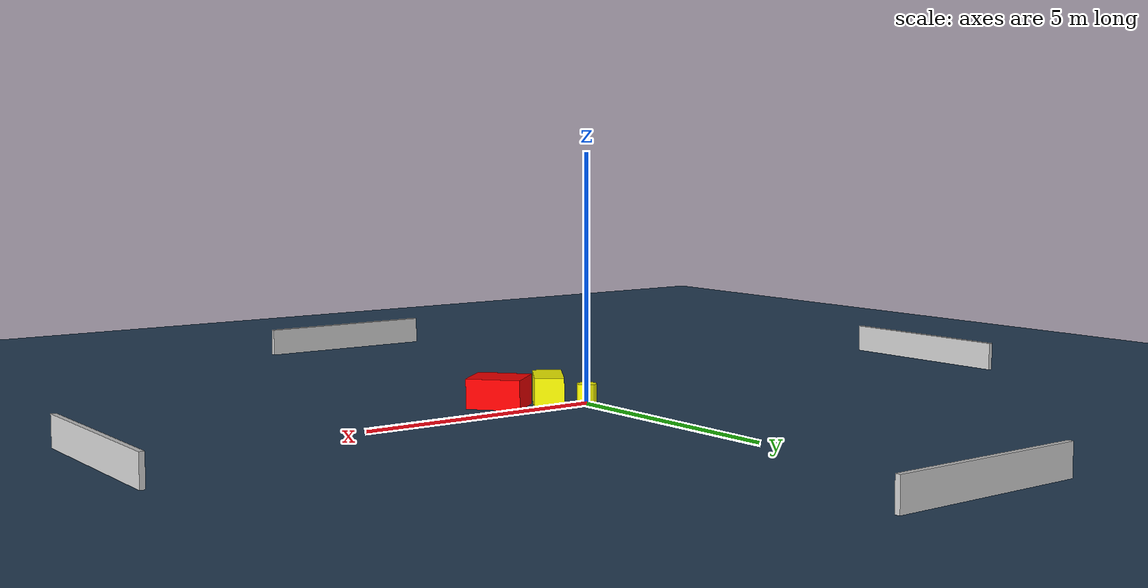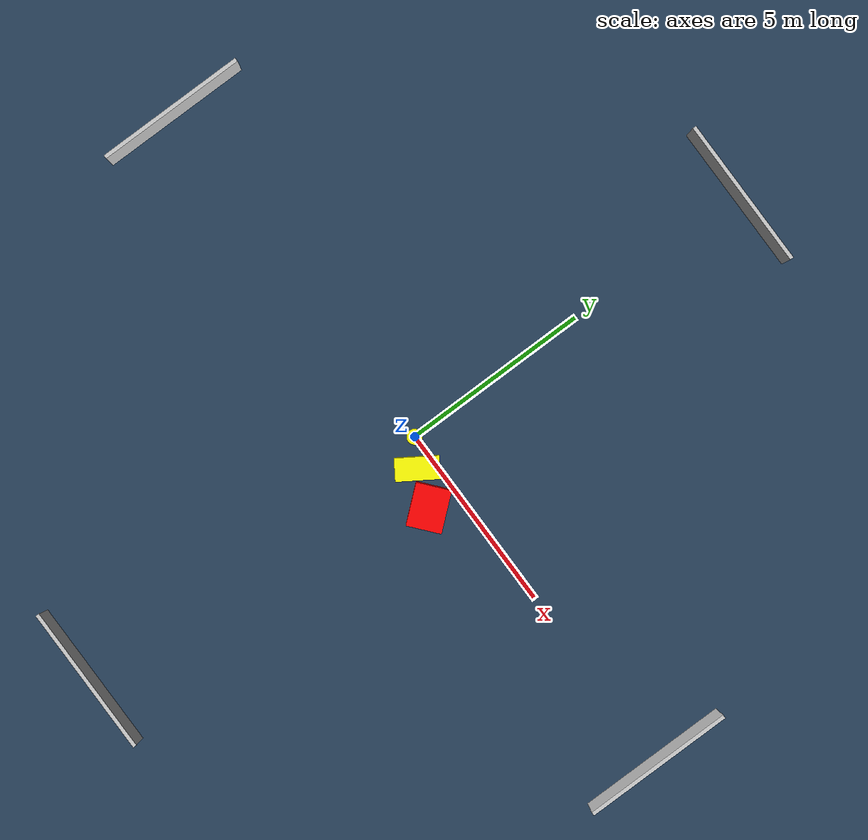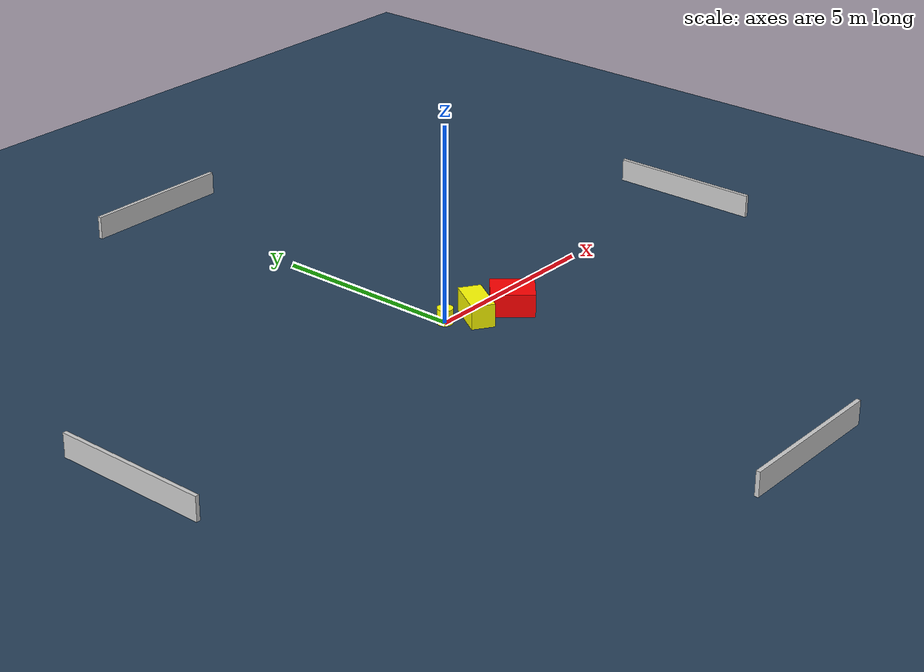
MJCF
<?xml version="1.0" ?>
<mujoco model="generated_environment">
  <option timestep="0.01" integrator="RK4" cone="elliptic"/>
  <default>
    <geom density="1"/>
  </default>
  <asset>
    <texture builtin="gradient" height="3072" name="skybox" rgb1="0.3 0.5 0.7" rgb2="0 0 0" type="skybox" width="512"/>
    <texture builtin="checker" height="300" name="groundplane" rgb1="0.2 0.3 0.4" rgb2="0.1 0.2 0.3" type="2d" width="300"/>
    <material name="groundplane" reflectance="0.2" texrepeat="5 5" texture="groundplane"/>
  </asset>
  <worldbody>
    <light dir="0 0 -1" directional="true" pos="0 0 1.5"/>
    <geom condim="3" friction="0.5 0.005 0.001" material="groundplane" name="floor" pos="0 0 0" size="0 0 0.05" type="plane"/>
    <body name="walls">
      <geom name="wall_1" condim="4" pos="-10.0 0.0 0.3" rgba="0.800000011920929 0.800000011920929 0.800000011920929 1.0" size="0.05 2.0 0.3" type="box"/>
      <geom name="wall_2" condim="4" pos="10.0 0.0 0.3" rgba="0.800000011920929 0.800000011920929 0.800000011920929 1.0" size="0.05 2.0 0.3" type="box"/>
      <geom name="wall_3" condim="4" pos="0.0 -10.0 0.3" rgba="0.800000011920929 0.800000011920929 0.800000011920929 1.0" size="2.0 0.05 0.3" type="box"/>
      <geom name="wall_4" condim="4" pos="0.0 10.0 0.3" rgba="0.800000011920929 0.800000011920929 0.800000011920929 1.0" size="2.0 0.05 0.3" type="box"/>
    </body>
    <body name="robot">
      <joint name="joint_x" type="slide" pos="0 0 0" axis="1 0 0"/>
      <joint name="joint_y" type="slide" pos="0 0 0" axis="0 1 0"/>
      <geom name="robot" type="cylinder" pos="0.0 0.0 0.2" size="0.2 0.2 0.0" mass="5.0" friction="1.0 0.005 0.0001" condim="4" rgba="1.0 1.0 0.0 1.0"/>
    </body>
    <body name="obstacle_1_movable">
      <geom name="obstacle_1_movable" condim="4" pos="0.6648082988882105 -0.412349129237415 0.3" euler="0 0 147.11487688363124" friction="0.0 0.005 0.001" rgba="1.0 1.0 0.0 1.0" size="0.2930651233125479 0.5601818020966653 0.3" type="box" mass="0.1"/>
      <joint type="free"/>
    </body>
    <body name="obstacle_2_static">
      <geom name="obstacle_2_static" condim="4" pos="1.607516778226076 -0.7611793741540279 0.3" euler="0 0 40.09178645689942" friction="0.0 0.005 0.001" rgba="1.0 0.0 0.0 1.0" size="0.4494227000592942 0.5483176018437028 0.3" type="box"/>
    </body>
  </worldbody>
  <actuator>
    <motor name="actuator_x" joint="joint_x" gear="1" ctrlrange="-1 1"/>
    <motor name="actuator_y" joint="joint_y" gear="1" ctrlrange="-1 1"/>
  </actuator>
</mujoco>
